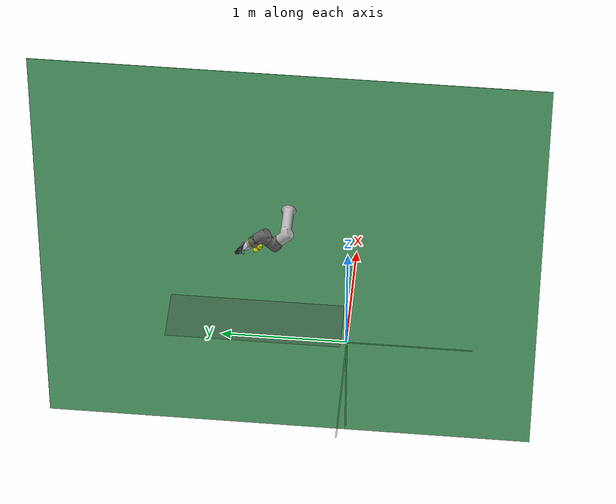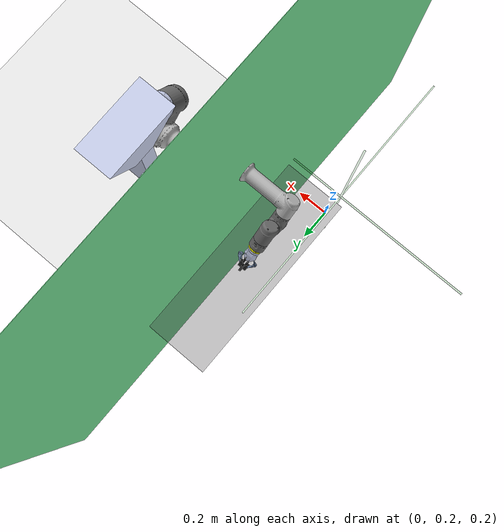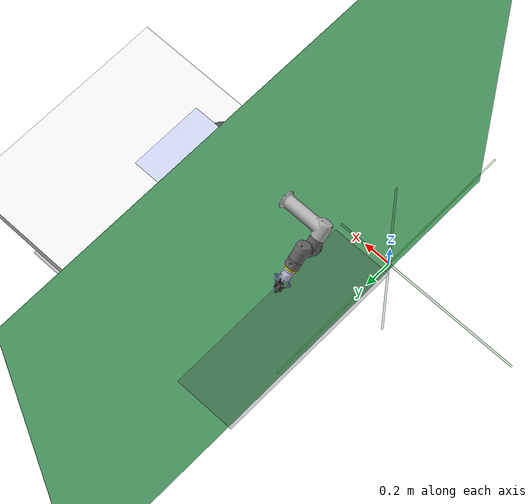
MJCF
<mujoco>
    <size njmax="2000" nconmax="500" nuserdata="2000" nuser_actuator="16"/>
    <option timestep="0.002" impratio="10" cone="elliptic">
        <flag warmstart="enable" energy="enable" fwdinv="enable"/>
    </option>

    <include file="shared.xml"/>

    <worldbody>
        <include file="tcp_mocap.xml"/>
        <geom name="floor" pos="0.8 0.75 0" size="0.85 0.7 1" type="plane" condim="3"
              material="floor_mat"/>

        <include file="robot.xml"/>
        <body pos="1.4508 0.773 0.453" name="table">
            <geom class="table_viz" name="table" size="0.6075 0.7655 0.03324" type="box" density="2000" solimp=".99 .999 .001" solref="-50000 -100"/>
        </body>

        <body pos="1.4508 0.773 0.453" name="table_collision">
            <!-- Position of collision plane: thickness of table + 0.001m = 0.03324 +0.001 = 0.03334. Safety margin is made w.r.t. real table.  -->
            <geom pos="0 0 0.03334" class="table_collision_plane_viz" name="table_collision_plane" size="0.6075 0.7655 1" type="plane"/>
        </body>

        <include file="URtable.xml"/>

        <include file="backdrop.xml"/>

        <light directional="true" ambient="0.2 0.2 0.2" diffuse="0.8 0.8 0.8"
               specular="0.1 0.1 0.1" attenuation="0.0 0.0 10.0"
               castshadow="false" pos="0 0 4" dir="0 0 -1" name="light0"/>

        <body name="robot0:vision_cam_front" pos="2.5933 0.7625 1.543">
            <camera quat="-0.6367045 -0.252152 -0.3069759 -0.6609029" fovy="28.58257" name="vision_cam_front" pos="0.0008854866 0.0207299 0.0007930994"></camera>
            <camera quat="-0.6367045 -0.252152 -0.3069759 -0.6609029" fovy="45" name="phys_checks_cam" pos="0.0008854866 0.0207299 0.0007930994"></camera>
        </body>
    </worldbody>

    <sensor>
        <!-- ======= Joint Position Sensors ======= -->
        <jointpos name="ur_jointPosSensor_1" joint="robot0:J1"/>
        <jointpos name="ur_jointPosSensor_2" joint="robot0:J2"/>
        <jointpos name="ur_jointPosSensor_3" joint="robot0:J3"/>
        <jointpos name="ur_jointPosSensor_4" joint="robot0:J4"/>
        <jointpos name="ur_jointPosSensor_5" joint="robot0:J5"/>
        <jointpos name="ur_jointPosSensor_6" joint="robot0:J6"/>
        <!-- ======== Force/Torque Sensors ========= -->
        <force name="toolhead_force" site="robot0:grip"/>
        <torque name="toolhead_torque" site="robot0:grip"/>
    </sensor>

    <equality>
        <weld name="mocap_weld" body1="robot0:mocap" body2="robot0:gripper_tcp" solimp="0.9 0.95 0.001" solref="0.02 1"></weld>
    </equality>

    <visual>
        <scale constraint=".0001" framewidth="0.025" framelength="0.7"/>
        <quality shadowsize="8192"/>
        <headlight diffuse=".4 .4 .4" ambient=".1 .1 .1"/>
    </visual>

</mujoco>

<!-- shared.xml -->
<mujocoinclude>
    <compiler angle="radian"/>
    <asset>
        <texture type="skybox" builtin="gradient" rgb1="0.44 0.85 0.56" rgb2="0.46 0.87 0.58" width="32" height="32"></texture>

        <material name="floor_mat" specular="0" shininess="0.5" reflectance="0" rgba="0.2 0.2 0.2 1"></material>
        <material name="table_mat" specular="0" shininess="0.5" reflectance="0" rgba="0.93 0.93 0.93 1"></material>
        <material name="block_mat" specular="0" shininess="0.5" reflectance="0" rgba="1 1 0 1"></material>

        <!--        Table .stl exported from Solidworks-->

        <!-- Simplified URTable -->
        <mesh name="URTable_base_link" file="robot/ur16e/URTable_base_link.stl"/>
        <mesh name="URTable_backsupport" file="robot/ur16e/URTable_backsupport.stl"/>
        <mesh name="URTable_topmount" file="robot/ur16e/URTable_topmount_LPLP.stl"/>

        <!--        UR16e Full Poly-->
        <mesh name="base_link" file="robot/ur16e/base_link.stl"/>
        <mesh name="Shoulder1" file="robot/ur16e/Shoulder1.stl"/>
        <mesh name="Shoulder2" file="robot/ur16e/Shoulder2.stl"/>
        <mesh name="Elbow" file="robot/ur16e/Elbow.stl"/>
        <mesh name="Wrist1" file="robot/ur16e/Wrist1.stl"/>
        <mesh name="Wrist2" file="robot/ur16e/Wrist2.stl"/>
        <mesh name="Wrist3" file="robot/ur16e/Wrist3.stl"/>

        <!--        UR16e Very Low Poly-->

        <!--        RobotIQ 2F-85 Full Poly -->

        <!--        RobotIQ 2F-85 Very Low Poly -->
        <mesh name="gripper_base_link" file="robot/robotiq_2f_85/base_link_LPLP_ROT_LOCAL.stl"/>
        <mesh name="left_outer_driver" file="robot/robotiq_2f_85/left_outer_driver_LPLP_ROT_LOCAL.stl"/>
        <mesh name="left_inner_follower" file="robot/robotiq_2f_85/left_inner_follower_LPLP_ROT_LOCAL.stl"/>
        <mesh name="left_gripper" file="robot/robotiq_2f_85/left_gripper_LPLP_ROT_LOCAL.stl"/>
        <mesh name="right_outer_driver" file="robot/robotiq_2f_85/right_outer_driver_LPLP_ROT_LOCAL.stl"/>
        <mesh name="right_inner_follower" file="robot/robotiq_2f_85/right_inner_follower_LPLP_ROT_LOCAL.stl"/>
        <mesh name="right_gripper" file="robot/robotiq_2f_85/right_gripper_LPLP_ROT_LOCAL.stl"/>

        <!--        RobotIQ 2F-85 IO plate -->
        <mesh name="gripper_io_plate" file="robot/robotiq_2f_85/gripper_io_plate_simple_LP.stl"/>
        <material name="GriMat" specular="0.9" shininess="0.5" reflectance="0" rgba="0.1 0.1 0.1 1" emission="0.1"/>
        <material name="ur_MatColl" specular="1" shininess=".3" reflectance="0.5" rgba=".4 .5 .6 1"/>
        <material name="ur_MatViz" specular="1" shininess=".1" reflectance="0.5" rgba=".7 .7 .7 1"/>
        <material name="ur_MatViz2" specular="1" shininess=".1" reflectance="0.8" rgba=".4 .4 .4 1"/>
        <material name="ur_invisible" specular="1" rgba="1 1 1 0"/>

        <!-- Wrist Camera -->
        <mesh file="robot/ur16e/wrist_cam/collision/0_BaslerCameraAndMount_20200725_20200725.stl" name="wrist_cam0"></mesh>
        <mesh file="robot/ur16e/wrist_cam/collision/1_BaslerCameraAndMount_20200725_20200725.stl" name="wrist_cam1"></mesh>
        <mesh file="robot/ur16e/wrist_cam/collision/2_BaslerCameraAndMount_20200725_20200725.stl" name="wrist_cam2"></mesh>
        <mesh file="robot/ur16e/wrist_cam/collision/3_BaslerCameraAndMount_20200725_20200725.stl" name="wrist_cam3"></mesh>
        <mesh file="robot/ur16e/wrist_cam/collision/4_BaslerCameraAndMount_20200725_20200725.stl" name="wrist_cam4"></mesh>
        <mesh file="robot/ur16e/wrist_cam/collision/5_BaslerCameraAndMount_20200725_20200725.stl" name="wrist_cam5"></mesh>
        <mesh file="robot/ur16e/wrist_cam/collision/6_BaslerCameraAndMount_20200725_20200725.stl" name="wrist_cam6"></mesh>
        <mesh file="robot/ur16e/wrist_cam/collision/7_BaslerCameraAndMount_20200725_20200725.stl" name="wrist_cam7"></mesh>
        <mesh file="robot/ur16e/wrist_cam/collision/8_BaslerCameraAndMount_20200725_20200725.stl" name="wrist_cam8"></mesh>
        <mesh file="robot/ur16e/wrist_cam/collision/9_BaslerCameraAndMount_20200725_20200725.stl" name="wrist_cam9"></mesh>
        <mesh file="robot/ur16e/wrist_cam/collision/10_BaslerCameraAndMount_20200725_20200725.stl" name="wrist_cam10"></mesh>
        <mesh file="robot/ur16e/wrist_cam/collision/11_BaslerCameraAndMount_20200725_20200725.stl" name="wrist_cam11"></mesh>
        <mesh file="robot/ur16e/wrist_cam/collision/12_BaslerCameraAndMount_20200725_20200725.stl" name="wrist_cam12"></mesh>
        <mesh file="robot/ur16e/wrist_cam/collision/13_BaslerCameraAndMount_20200725_20200725.stl" name="wrist_cam13"></mesh>
        <mesh file="robot/ur16e/wrist_cam/collision/14_BaslerCameraAndMount_20200725_20200725.stl" name="wrist_cam14"></mesh>

    </asset>

    <default>
        <default class="ur16e_viz">
            <geom margin="0.001" material="ur_MatViz" group="2" type="mesh" contype="3" conaffinity="8"/>
        </default>

        <default class="gripper_joint">
            <joint armature="100" damping="2000" frictionloss="10" limited="true" range="-.04473 0"/>
        </default>

        <default class="gripper_viz">
            <geom material="GriMat" contype="3" conaffinity="2" group="2"/>
        </default>

        <default class="table_viz">
            <geom material="table_mat" contype="1" conaffinity="1" group="2"/>
        </default>

        <default class="backdrop_viz">
            <geom material="table_mat" contype="1" conaffinity="1"/>
        </default>

        <default class="table_collision_plane_viz">
            <geom material="ur_invisible" contype="0" conaffinity="2"/>
        </default>

        <default class="wrist_cam_collision_viz">
            <geom material="ur_invisible" contype="2" conaffinity="1"/>
        </default>

        <default class="no_collision">
            <geom material="GriMat" contype="0" conaffinity="0"/>
        </default>

    </default>
</mujocoinclude>

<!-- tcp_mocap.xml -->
<mujocoinclude>
    <body mocap="true" name="robot0:mocap" pos="0 0 0">
        <geom conaffinity="0" contype="0" pos="0 0 0" rgba="0 0.5 0 0.7" size="0.005 0.005 0.005" type="box"></geom>
        <geom conaffinity="0" contype="0" pos="0 0 0" rgba="0 0.5 0 0.1" size="1 0.005 0.005" type="box"></geom>
        <geom conaffinity="0" contype="0" pos="0 0 0" rgba="0 0.5 0 0.1" size="0.005 1 0.001" type="box"></geom>
        <geom conaffinity="0" contype="0" pos="0 0 0" rgba="0 0.5 0 0.1" size="0.005 0.005 1" type="box"></geom>
    </body>
</mujocoinclude>

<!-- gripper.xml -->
<mujoco>
    <body name="robot0:gripper_io_plate" pos="0 0.0 0.06765" quat="0 0 0 1">
        <site name="robot0:grip" pos="0.0 0 0.174" rgba="0 0 1 1" size="0.002 0.002 0.002"></site>
        <body name="robot0:gripper_tcp" pos="0 0 0.174" ></body>
        <geom name="robot0:gripper_io_plate_v" type="mesh" class="gripper_viz" rgba="0.79216 0.81961 0.93333 1" mesh="gripper_io_plate"/>
        <body name="robot0:gripper_base" pos="0 0 0.011">
            <geom name="robot0:gripper_base_geom_v" contype="4" conaffinity="1" class="gripper_viz" type="mesh" rgba="0.79216 0.81961 0.93333 1" mesh="gripper_base_link"/>
            <body name="left_gripper" pos="-0.0252608  0  0.111806">
                <inertial pos="0.014568 0.016496 5.0001e-05" quat="0.688711 0.688711 -0.160242 -0.160242" mass="0.014539" diaginertia="1.73287e-06 1.7058e-06 8.95029e-07"/>
                <joint class="gripper_joint" name="robot0:l_gripper_LJ0_outer" type="slide" axis="42.655 0 13.4654"/>
                <geom name="robot0:left_contact_v" class="gripper_viz" type="box" pos=".0221 0 .032 " euler="0 0 0" size="0.003195 0.011 0.019" condim="4" friction="1 0.05 0.01" solref="-20000 -500" solimp=".99 .999 .001" />
                <geom name="robot0:left_contact_support_v" class="gripper_viz" type="box" pos=".01 0 .01" euler="0 0 0" size="0.01 0.0081 .019"/>
                <body name="left_inner_follower" pos="0.012561 0 -0.050385 ">
                    <inertial pos="0.0029392 0.029265 -5.5925e-09" quat="0.706169 0.706169 -0.0364056 -0.0364056" mass="0.010114" diaginertia="4.38469e-06 2.9648e-06 1.66211e-06"/>
                    <geom name="robot0:left_inner_follower_v" class="gripper_viz" type="mesh" rgba="0.039216 0.039216 0.039216 1" mesh="left_inner_follower"/>
                </body>
                <body name="left_outer_driver" pos="-0.0053402 0 -0.056901">
                    <inertial pos="-0.012466 0.028837 4.1747e-06" quat="0.682958 0.682426 -0.184366 -0.184046" mass="0.019227" diaginertia="5.03843e-06 4.8207e-06 2.32836e-06"/>
                    <geom name="robot0:left_outer_driver_v" class="gripper_viz" type="mesh" rgba="0.5 0.6 0.75 1" mesh="left_outer_driver"/>
                </body>
            </body>

            <body name="right_gripper" pos="0.0252608 0 0.111806">
                <inertial pos="-0.014568 0.016496 -9.1992e-10" quat="0.688711 0.688711 0.160242 0.160242" mass="0.014539" diaginertia="1.73287e-06 1.7058e-06 8.95029e-07"/>
                <joint class="gripper_joint" name="robot0:r_gripper_RJ0_outer" type="slide" axis="-42.655 0 13.4654"/>
                <geom name="robot0:right_contact_v" class="gripper_viz" type="box" pos="-.0221 0 .032" euler="0 0 0" size="0.003195 0.011 0.019" condim="4" friction="1 0.05 0.01" solref="-20000 -500" solimp=".99 .999 .001" />
                <geom name="robot0:right_contact_support_v" class="gripper_viz" type="box" pos="-.01 0 .01" euler="0 0 0" size="0.01 0.0081 .019"/>
                <body name="right_inner_follower" pos="-0.012561 0 -0.050385">
                    <inertial pos="-0.0029392 0.029265 5.5925e-09" quat="0.706169 0.706169 0.0364056 0.0364056" mass="0.010114" diaginertia="4.38469e-06 2.9648e-06 1.66211e-06"/>
                    <geom name="robot0:right_inner_follower_v" class="gripper_viz" type="mesh" rgba="0.039216 0.039216 0.039216 1" mesh="right_inner_follower"/>
                </body>
                <body name="right_outer_driver" pos="0.0053402 0 -0.056901">
                    <inertial pos="-0.012466 0.028837 4.1747e-06" quat="0.682958 0.682426 -0.184366 -0.184046" mass="0.019227" diaginertia="5.03843e-06 4.8207e-06 2.32836e-06"/>
                    <geom name="robot0:right_outer_driver_v" class="gripper_viz" type="mesh" rgba="0.5 0.6 0.75 1" mesh="right_outer_driver"/>
                </body>
            </body>
        </body>
    </body>
</mujoco>

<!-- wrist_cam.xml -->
<mujoco>
	<body name="robot0:wrist_cam" pos="0.0 0.0 0.05965" quat="1 0 0 0">
		<geom name="robot0:wrist_cam_mesh0" type="mesh" mesh="wrist_cam0" material="block_mat" class="no_collision"></geom>
		<geom name="robot0:wrist_cam_mesh1" type="mesh" mesh="wrist_cam1" material="block_mat" class="no_collision"></geom>
		<geom name="robot0:wrist_cam_mesh2" type="mesh" mesh="wrist_cam2" material="block_mat" class="no_collision"></geom>
		<geom name="robot0:wrist_cam_mesh3" type="mesh" mesh="wrist_cam3" material="block_mat" class="no_collision"></geom>
		<geom name="robot0:wrist_cam_mesh4" type="mesh" mesh="wrist_cam4" material="block_mat" class="no_collision"></geom>
		<geom name="robot0:wrist_cam_mesh5" type="mesh" mesh="wrist_cam5" material="block_mat" class="no_collision"></geom>
		<geom name="robot0:wrist_cam_mesh6" type="mesh" mesh="wrist_cam6" material="block_mat" class="no_collision"></geom>
		<geom name="robot0:wrist_cam_mesh7" type="mesh" mesh="wrist_cam7" material="block_mat" class="no_collision"></geom>
		<geom name="robot0:wrist_cam_mesh8" type="mesh" mesh="wrist_cam8" material="block_mat" class="no_collision"></geom>
		<geom name="robot0:wrist_cam_mesh9" type="mesh" mesh="wrist_cam9" material="block_mat" class="no_collision"></geom>
		<geom name="robot0:wrist_cam_mesh10" type="mesh" mesh="wrist_cam10" material="block_mat" class="no_collision"></geom>
		<geom name="robot0:wrist_cam_mesh11" type="mesh" mesh="wrist_cam11" material="block_mat" class="no_collision"></geom>
		<geom name="robot0:wrist_cam_mesh12" type="mesh" mesh="wrist_cam12" material="block_mat" class="no_collision"></geom>
		<geom name="robot0:wrist_cam_mesh13" type="mesh" mesh="wrist_cam13" material="block_mat" class="no_collision"></geom>
		<geom name="robot0:wrist_cam_mesh14" type="mesh" mesh="wrist_cam14" material="block_mat" class="no_collision"></geom>
		<geom name="robot0:wrist_cam_collision_sphere" pos="0.0 -0.068 0.005" type="cylinder" size="0.032 0.045" class="wrist_cam_collision_viz"/>
	</body>
</mujoco>

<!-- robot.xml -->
<mujocoinclude>
    <body pos="0.95125 0.60 1.1993" quat="0.383 0.924 0.0 0.0" name="robot0:base_link">
        <geom name="robot0:base_link" type="mesh" class="ur16e_viz" rgba="0.792157 0.819608 0.933333 1" mesh="base_link"/>
        <body name="Shoulder1" pos="0 0 0.0993" quat="0.707105 0.707108 0 0">
            <inertial pos="-8.131e-07 0.082255 0.013094" quat="0.575029 0.818133 -7.90128e-05 4.38531e-05" mass="7.369" fullinertia="0.03351 0.03374 0.021 0.00002 -0.00001 0.00374"/>
            <joint class="ur16e_J1" name="robot0:J1" pos="0 0 0" axis="0 1 0"/>
            <geom name="robot0:J1" type="mesh" class="ur16e_viz" material="ur_MatViz2" mesh="Shoulder1"/>
            <body name="Shoulder2" pos="0 0.0814 0.0946" quat="0.707105 0 0 0.707108">
                <inertial pos="-4.978e-08 0.18974 0.081646" quat="0.707886 0.706327 -1.30904e-05 6.99582e-06" mass="10.45" fullinertia="0.02796 0.47558 0.47635 -0.0001 -0.0072 0.00003"/>
                <joint class="ur16e_J2" name="robot0:J2" pos="0 0 0" axis="0 0 1"/>
                <geom name="robot0:J2" type="mesh" class="ur16e_viz" mesh="Shoulder2"/>
                <body name="Elbow" pos="0 0.4784 0">
                    <inertial pos="-1.5433e-05 0.16483 -0.048444" quat="0.727983 0.685593 0.00104972 -0.00118007" mass="4.321" fullinertia="0.01091 0.1206 0.11714 0.00006 0.01012 0.00001"/>
                    <joint class="ur16e_J3" name="robot0:J3" pos="0 0 0" axis="0 0 1"/>
                    <geom name="robot0:J3" type="mesh" class="ur16e_viz" mesh="Elbow"/>
                    <body name="Wrist1" pos="0 0.36 0" quat="0.707105 0 0 0.707108">
                        <inertial pos="6.1842e-06 0.0015493 0.063631" quat="0.992906 -0.118901 -4.17174e-05 2.7602e-05" mass="2.18" fullinertia="0.00609 0.00245 0.00579 -0.00001 0 0.00083"/>
                        <joint class="ur16e_J4" name="robot0:J4" pos="0 0 0" axis="0 0 1"/>
                        <geom name="robot0:J4" type="mesh" class="ur16e_viz" material="ur_MatViz2" mesh="Wrist1" contype="1" conaffinity="1"/>
                        <body name="Wrist2" pos="0 0.0033422 0.07955">
                            <inertial pos="1.976e-07 0.1069 0.0017385" quat="0.987557 -0.157259 2.3055e-05 -5.48448e-05" mass="2.033" fullinertia="0.00389 0.00219 0.00363 -0.00001 0 -0.00045"/>
                            <joint class="ur16e_J5" name="robot0:J5" pos="0 0 0" axis="0 1 0"/>
                            <geom name="robot0:J5" type="mesh" class="ur16e_viz" material="ur_MatViz2" mesh="Wrist2" contype="1" conaffinity="1"/>
                            <body name="Wrist3" pos="0 0.11651 0.0569">
                                <body name="robot0:vision_cam_wrist" pos="0 -0.07 0.0">
                                    <site name="robot0:vision_cam_wrist" pos="0 0 0.085"  size="0.003" rgba="1 0 0 1" type="sphere"/>
                                    <camera quat="0.08715574 0.9961947 0.0 0.0" fovy="37.0" name="vision_cam_wrist" pos="0.0 0.0 0.085"/>
                                </body>
                                <inertial pos="5.5566e-10 -7.868e-05 0.027763" quat="0.000216829 0.707107 0.000228093 0.707107" mass="0.907" fullinertia="0.00117 0.00118 0.00084 0 0 0"/>
                                <joint class="ur16e_J6" name="robot0:J6" pos="0 0 0" axis="0 0 1"/>
                                <geom name="robot0:J6" type="mesh" class="ur16e_viz" material="ur_MatViz2" mesh="Wrist3"/>
                                <site name="robot0:ur_centerplate" pos="0 0.0 0.05965"/>
                                <body name="robot0:plate_center" pos="0 0.0 0.05965">
                                    <geom name="robot0:" type="sphere" size="0.005" rgba="1 0.42 0.039 1"/>
                                </body>
                                <include file="gripper.xml"/>
                                <include file="wrist_cam.xml"/>
                            </body>
                        </body>
                    </body>
                </body>
            </body>
        </body>

        <body name="robot0:vision_cam_top" pos="0 0 0">
            <camera quat="0.1234811 0.03281631 0.9236646 0.3612743" fovy="36.392" name="vision_cam_top" pos="0.7477575 0.4143189 -0.5325117"></camera>
        </body>
    </body>
</mujocoinclude>

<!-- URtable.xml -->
<!-- URtable -->
<mujoco model="URTable">
    <body pos="-.08 .262 -.158" euler="0 0 1.5708">
        <geom type="mesh" rgba="0.79216 0.81961 0.93333 1" mesh="URTable_base_link" solimp = "0.99 0.99 1 0.99 6" solref = ".00001 1"/>
        <geom pos="0.50993 -0.95683 0.63731" quat="0.707105 0.707108 0 0" type="mesh" rgba="0.79216 0.81961 0.93333 1" mesh="URTable_backsupport" solimp = "0.99 0.99 1 0.99 6" solref = ".00001 1"/>
        <geom pos="0 -1.14983 -7.08924e-07" quat="0.707105 0.707108 0 0" type="mesh" rgba="0.79216 0.81961 0.93333 1" mesh="URTable_topmount" solimp = "0.99 0.99 1 0.99 6" solref = ".00001 1"/>
    </body>
</mujoco>

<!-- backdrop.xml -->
<!-- Background panel behind UR arm -->
<mujoco model="backdrop">
    <body pos="0.4 0.5 0.5" name="backdrop">
        <geom class="backdrop_viz" name="backdrop" size="0.001 2.0 2.0" type="box" rgba="0.44 0.85 0.56 1.0"/>
    </body>
</mujoco>
